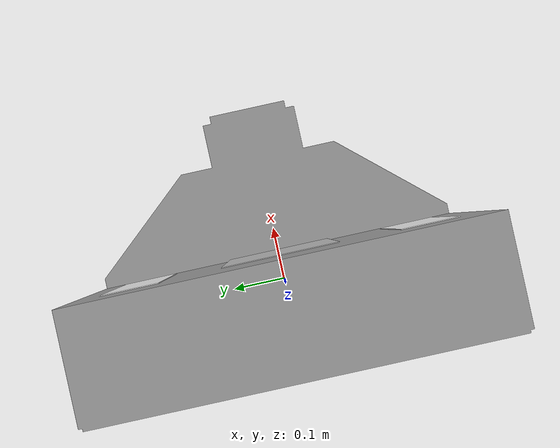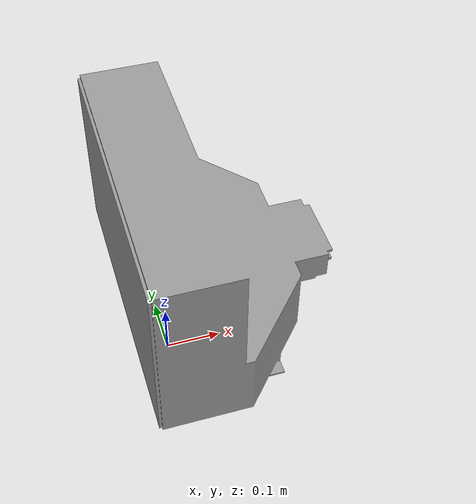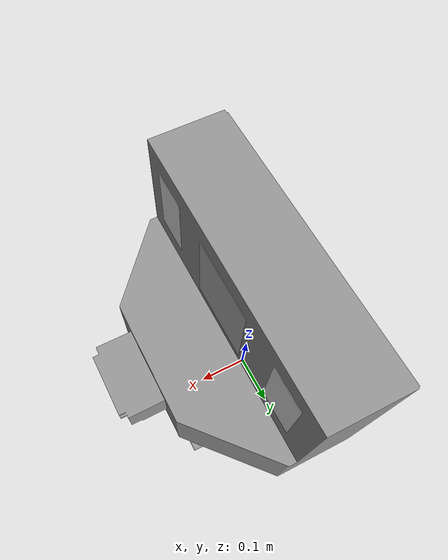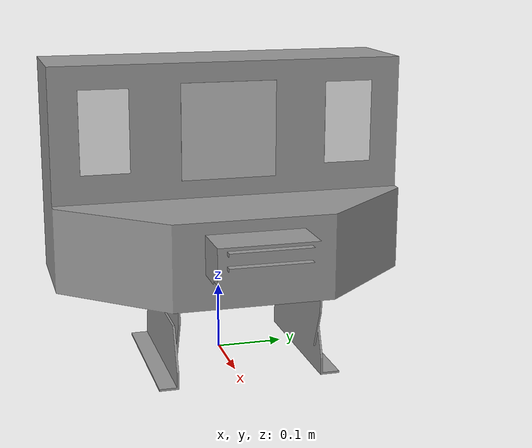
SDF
<?xml version='1.0'?>
<sdf version='1.6'>
  <model name='robotnik_charging_station'>
    <static>true</static>
    <canonical_link>charging_station_link</canonical_link>
    <allow_auto_disable>true</allow_auto_disable>

    <!-- Main dock -->
    <link name='charging_station_link'>
      <pose>-0.071684 0.000885 0.135 0 0 0</pose>
      <self_collide>false</self_collide>
      <enable_wind>false</enable_wind>

      <visual name='charging_station_visual'>
        <pose>0 0 0 0 0 0</pose>
        <geometry>
          <mesh>
            <uri>meshes/summit_docking_station.stl</uri>
            <scale>1 1 1</scale>
          </mesh>
        </geometry>
        <material>
          <lighting>true</lighting>
          <script>
            <uri>file://media/materials/scripts/gazebo.material</uri>
            <name>Gazebo/Grey</name>
          </script>
          <ambient>0.2 0.2 0.2 1</ambient>
          <diffuse>0.7 0.7 0.7 1</diffuse>
          <specular>0.1 0.1 0.1 1</specular>
        </material>
        <transparency>0.0</transparency>
        <cast_shadows>true</cast_shadows>
      </visual>

      <collision name='charging_station_collision'>
        <pose>0 0 0 0 0 0</pose>
        <geometry>
          <mesh>
            <uri>meshes/summit_docking_station.stl</uri>
            <scale>1 1 1</scale>
          </mesh>
        </geometry>
        <surface>
          <friction>
            <ode>
              <mu>1.0</mu>
              <mu2>1.0</mu2>
              <slip1>0</slip1>
              <slip2>0</slip2>
            </ode>
          </friction>
          <contact>
            <ode>
              <soft_cfm>0</soft_cfm>
              <soft_erp>0.2</soft_erp>
              <max_vel>0.05</max_vel>
              <min_depth>0.001</min_depth>
            </ode>
          </contact>
          <bounce>
            <restitution_coefficient>0</restitution_coefficient>
            <threshold>1e6</threshold>
          </bounce>
        </surface>
        <max_contacts>10</max_contacts>
      </collision>
    </link>

    <!-- Retroreflective left strip -->
    <link name='left_reflector'>
      <pose>0.07 -0.18 0.36 0 0 0</pose>
      <self_collide>false</self_collide>
      <enable_wind>false</enable_wind>

      <visual name='left_reflector_visual'>
        <pose>0 0 0 0 0 0</pose>
        <geometry>
          <box>
            <size>0.001 0.071 0.12</size>
          </box>
        </geometry>
        <material>
          <lighting>true</lighting>
          <script>
            <uri>file://media/materials/scripts/gazebo.material</uri>
            <name>Gazebo/White</name>
          </script>
        </material>
        <transparency>0.0</transparency>
        <cast_shadows>true</cast_shadows>
      </visual>

      <collision name='left_reflector_collision'>
        <pose>0 0 0 0 0 0</pose>
        <geometry>
          <box>
            <size>0.001 0.071 0.12</size>
          </box>
        </geometry>
        <laser_retro>200</laser_retro>
        <surface>
          <friction><ode><mu>0.8</mu><mu2>0.8</mu2></ode></friction>
          <contact><ode><soft_erp>0.2</soft_erp><soft_cfm>0</soft_cfm></ode></contact>
        </surface>
        <max_contacts>10</max_contacts>
      </collision>
    </link>

    <!-- Retroreflective right strip -->
    <link name='right_reflector'>
      <pose>0.07 0.18 0.36 0 0 0</pose>
      <self_collide>false</self_collide>
      <enable_wind>false</enable_wind>

      <visual name='right_reflector_visual'>
        <pose>0 0 0 0 0 0</pose>
        <geometry>
          <box>
            <size>0.001 0.071 0.12</size>
          </box>
        </geometry>
        <material>
          <lighting>true</lighting>
          <script>
            <uri>file://media/materials/scripts/gazebo.material</uri>
            <name>Gazebo/White</name>
          </script>
        </material>
        <transparency>0.0</transparency>
        <cast_shadows>true</cast_shadows>
      </visual>

      <collision name='right_reflector_collision'>
        <pose>0 0 0 0 0 0</pose>
        <geometry>
          <box>
            <size>0.001 0.071 0.12</size>
          </box>
        </geometry>
        <laser_retro>200</laser_retro>
        <surface>
          <friction><ode><mu>0.8</mu><mu2>0.8</mu2></ode></friction>
          <contact><ode><soft_erp>0.2</soft_erp><soft_cfm>0</soft_cfm></ode></contact>
        </surface>
        <max_contacts>10</max_contacts>
      </collision>
    </link>

    <!-- Fiducial marker as nested static model -->
    <model name='marker1_border_12cm'>
      <static>true</static>
      <pose>0.071684 -0.000885 0.355 0 0 0</pose>
      <link name='marker1_border_12cm'>
        <visual name='marker_visual'>
          <geometry>
            <box>
              <size>0.001 0.14 0.14</size>
            </box>
          </geometry>
          <material>
            <script>
              <uri>material/scripts</uri>
              <name>ARtrack/marker1_border_12cm</name>
            </script>
          </material>
        </visual>
        <collision name='marker_collision'>
          <geometry>
            <box>
              <size>0.001 0.14 0.14</size>
            </box>
          </geometry>
          <surface>
            <friction><ode><mu>0.6</mu><mu2>0.6</mu2></ode></friction>
          </surface>
        </collision>
      </link>
    </model>

  </model>
</sdf>
